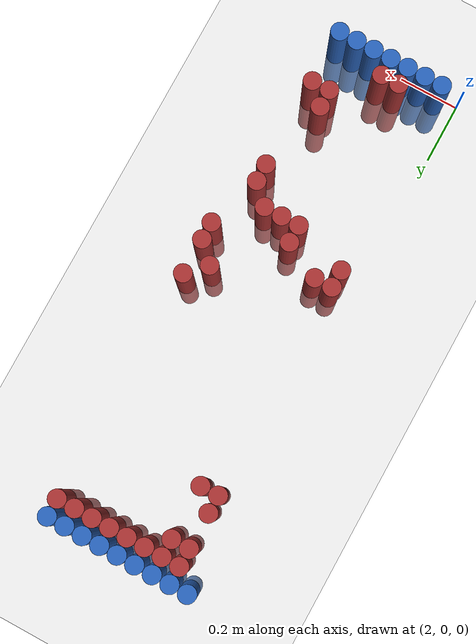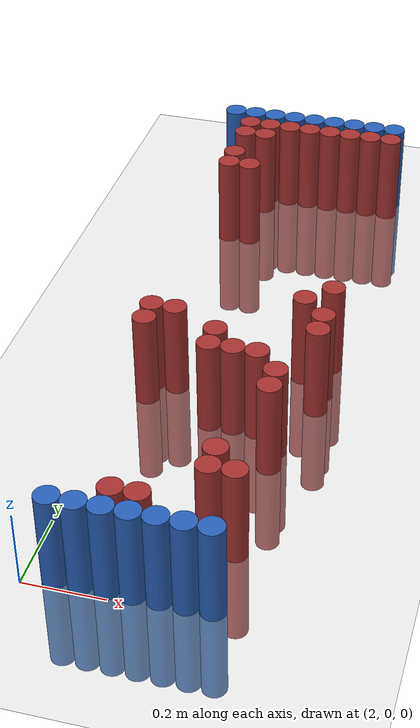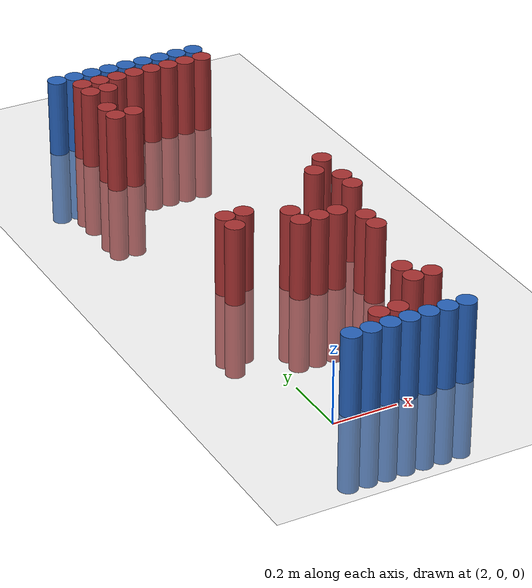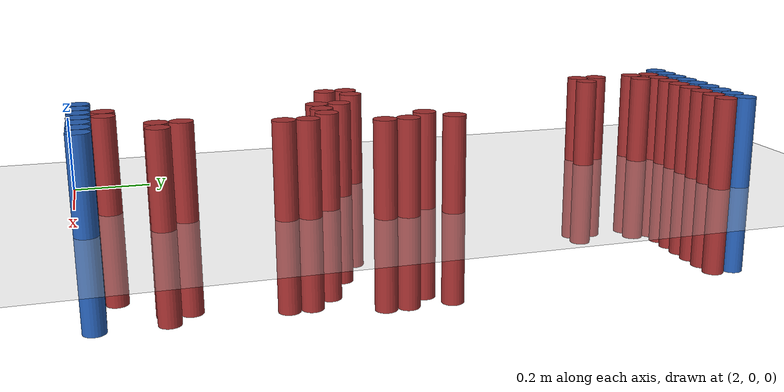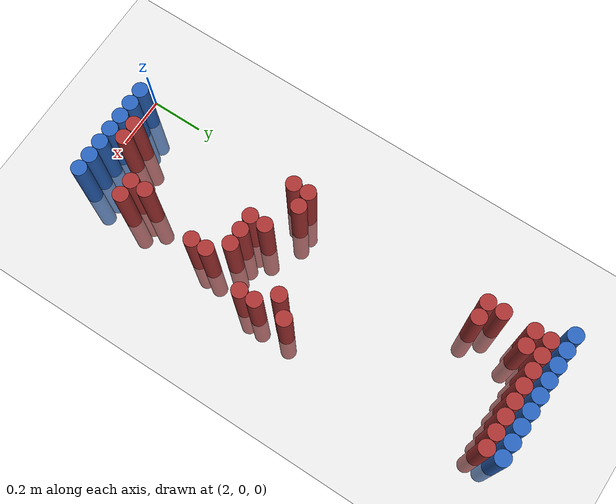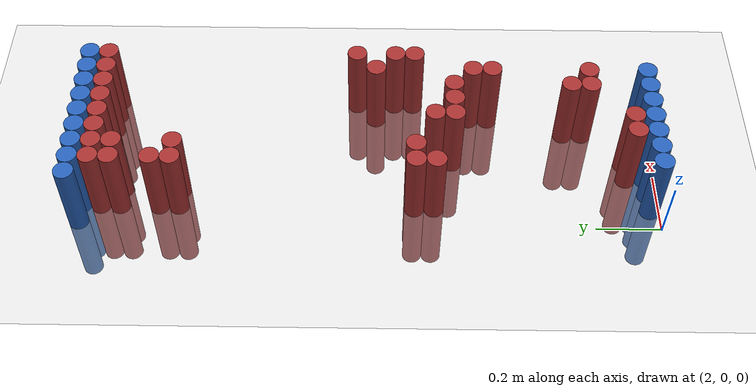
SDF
<sdf version="1.6">
 <world name="default">
  <model name="ground_plane">
   <static>1</static>
   <link name="link">
    <collision name="collision">
     <geometry><plane><normal>0 0 1</normal><size>100 100</size></plane></geometry>
     <surface><friction><ode><mu>100</mu><mu2>50</mu2></ode></friction></surface>
    </collision>
    <visual name="visual">
     <cast_shadows>0</cast_shadows>
     <geometry><plane><normal>0 0 1</normal><size>100 100</size></plane></geometry>
     <material>
      <script><uri>file://media/materials/scripts/gazebo.material</uri><name>Gazebo/Grey</name></script>
     </material>
    </visual>
   </link>
  </model>
  <model name="unit_cylinder_94">
   <static>1</static>
   <pose>2.010000 1.770000 0.000000 0.000000 0.000000 0.000000</pose>
   <link name="link">
    <inertial>
     <mass>1</mass>
     <inertia><ixx>0.145833</ixx><ixy>0</ixy><ixz>0</ixz><iyy>0.145833</iyy><iyz>0</iyz><izz>0.125</izz></inertia>
    </inertial>
    <collision name="collision">
     <geometry><cylinder><radius>0.030000</radius><length>0.5</length></cylinder></geometry>
    </collision>
    <visual name="visual">
     <geometry><cylinder><radius>0.030000</radius><length>0.5</length></cylinder></geometry>
     <material>
      <ambient>0.152000 0.379000 0.720000 1</ambient>
      <diffuse>0.152000 0.379000 0.720000 1</diffuse>
     </material>
     <material>
      <script><name>Gazebo/Grey</name><uri>file://media/materials/scripts/gazebo.material</uri></script>
     </material>
    </visual>
   </link>
  </model>
  <model name="unit_cylinder_95">
   <static>1</static>
   <pose>2.070000 1.770000 0.000000 0.000000 0.000000 0.000000</pose>
   <link name="link">
    <inertial>
     <mass>1</mass>
     <inertia><ixx>0.145833</ixx><ixy>0</ixy><ixz>0</ixz><iyy>0.145833</iyy><iyz>0</iyz><izz>0.125</izz></inertia>
    </inertial>
    <collision name="collision">
     <geometry><cylinder><radius>0.030000</radius><length>0.5</length></cylinder></geometry>
    </collision>
    <visual name="visual">
     <geometry><cylinder><radius>0.030000</radius><length>0.5</length></cylinder></geometry>
     <material>
      <ambient>0.152000 0.379000 0.720000 1</ambient>
      <diffuse>0.152000 0.379000 0.720000 1</diffuse>
     </material>
     <material>
      <script><name>Gazebo/Grey</name><uri>file://media/materials/scripts/gazebo.material</uri></script>
     </material>
    </visual>
   </link>
  </model>
  <model name="unit_cylinder_96">
   <static>1</static>
   <pose>2.130000 1.770000 0.000000 0.000000 0.000000 0.000000</pose>
   <link name="link">
    <inertial>
     <mass>1</mass>
     <inertia><ixx>0.145833</ixx><ixy>0</ixy><ixz>0</ixz><iyy>0.145833</iyy><iyz>0</iyz><izz>0.125</izz></inertia>
    </inertial>
    <collision name="collision">
     <geometry><cylinder><radius>0.030000</radius><length>0.5</length></cylinder></geometry>
    </collision>
    <visual name="visual">
     <geometry><cylinder><radius>0.030000</radius><length>0.5</length></cylinder></geometry>
     <material>
      <ambient>0.152000 0.379000 0.720000 1</ambient>
      <diffuse>0.152000 0.379000 0.720000 1</diffuse>
     </material>
     <material>
      <script><name>Gazebo/Grey</name><uri>file://media/materials/scripts/gazebo.material</uri></script>
     </material>
    </visual>
   </link>
  </model>
  <model name="unit_cylinder_97">
   <static>1</static>
   <pose>2.190000 1.770000 0.000000 0.000000 0.000000 0.000000</pose>
   <link name="link">
    <inertial>
     <mass>1</mass>
     <inertia><ixx>0.145833</ixx><ixy>0</ixy><ixz>0</ixz><iyy>0.145833</iyy><iyz>0</iyz><izz>0.125</izz></inertia>
    </inertial>
    <collision name="collision">
     <geometry><cylinder><radius>0.030000</radius><length>0.5</length></cylinder></geometry>
    </collision>
    <visual name="visual">
     <geometry><cylinder><radius>0.030000</radius><length>0.5</length></cylinder></geometry>
     <material>
      <ambient>0.152000 0.379000 0.720000 1</ambient>
      <diffuse>0.152000 0.379000 0.720000 1</diffuse>
     </material>
     <material>
      <script><name>Gazebo/Grey</name><uri>file://media/materials/scripts/gazebo.material</uri></script>
     </material>
    </visual>
   </link>
  </model>
  <model name="unit_cylinder_98">
   <static>1</static>
   <pose>2.250000 1.770000 0.000000 0.000000 0.000000 0.000000</pose>
   <link name="link">
    <inertial>
     <mass>1</mass>
     <inertia><ixx>0.145833</ixx><ixy>0</ixy><ixz>0</ixz><iyy>0.145833</iyy><iyz>0</iyz><izz>0.125</izz></inertia>
    </inertial>
    <collision name="collision">
     <geometry><cylinder><radius>0.030000</radius><length>0.5</length></cylinder></geometry>
    </collision>
    <visual name="visual">
     <geometry><cylinder><radius>0.030000</radius><length>0.5</length></cylinder></geometry>
     <material>
      <ambient>0.152000 0.379000 0.720000 1</ambient>
      <diffuse>0.152000 0.379000 0.720000 1</diffuse>
     </material>
     <material>
      <script><name>Gazebo/Grey</name><uri>file://media/materials/scripts/gazebo.material</uri></script>
     </material>
    </visual>
   </link>
  </model>
  <model name="unit_cylinder_99">
   <static>1</static>
   <pose>2.310000 1.770000 0.000000 0.000000 0.000000 0.000000</pose>
   <link name="link">
    <inertial>
     <mass>1</mass>
     <inertia><ixx>0.145833</ixx><ixy>0</ixy><ixz>0</ixz><iyy>0.145833</iyy><iyz>0</iyz><izz>0.125</izz></inertia>
    </inertial>
    <collision name="collision">
     <geometry><cylinder><radius>0.030000</radius><length>0.5</length></cylinder></geometry>
    </collision>
    <visual name="visual">
     <geometry><cylinder><radius>0.030000</radius><length>0.5</length></cylinder></geometry>
     <material>
      <ambient>0.152000 0.379000 0.720000 1</ambient>
      <diffuse>0.152000 0.379000 0.720000 1</diffuse>
     </material>
     <material>
      <script><name>Gazebo/Grey</name><uri>file://media/materials/scripts/gazebo.material</uri></script>
     </material>
    </visual>
   </link>
  </model>
  <model name="unit_cylinder_100">
   <static>1</static>
   <pose>2.370000 1.770000 0.000000 0.000000 0.000000 0.000000</pose>
   <link name="link">
    <inertial>
     <mass>1</mass>
     <inertia><ixx>0.145833</ixx><ixy>0</ixy><ixz>0</ixz><iyy>0.145833</iyy><iyz>0</iyz><izz>0.125</izz></inertia>
    </inertial>
    <collision name="collision">
     <geometry><cylinder><radius>0.030000</radius><length>0.5</length></cylinder></geometry>
    </collision>
    <visual name="visual">
     <geometry><cylinder><radius>0.030000</radius><length>0.5</length></cylinder></geometry>
     <material>
      <ambient>0.152000 0.379000 0.720000 1</ambient>
      <diffuse>0.152000 0.379000 0.720000 1</diffuse>
     </material>
     <material>
      <script><name>Gazebo/Grey</name><uri>file://media/materials/scripts/gazebo.material</uri></script>
     </material>
    </visual>
   </link>
  </model>
  <model name="unit_cylinder_101">
   <static>1</static>
   <pose>2.430000 1.770000 0.000000 0.000000 0.000000 0.000000</pose>
   <link name="link">
    <inertial>
     <mass>1</mass>
     <inertia><ixx>0.145833</ixx><ixy>0</ixy><ixz>0</ixz><iyy>0.145833</iyy><iyz>0</iyz><izz>0.125</izz></inertia>
    </inertial>
    <collision name="collision">
     <geometry><cylinder><radius>0.030000</radius><length>0.5</length></cylinder></geometry>
    </collision>
    <visual name="visual">
     <geometry><cylinder><radius>0.030000</radius><length>0.5</length></cylinder></geometry>
     <material>
      <ambient>0.152000 0.379000 0.720000 1</ambient>
      <diffuse>0.152000 0.379000 0.720000 1</diffuse>
     </material>
     <material>
      <script><name>Gazebo/Grey</name><uri>file://media/materials/scripts/gazebo.material</uri></script>
     </material>
    </visual>
   </link>
  </model>
  <model name="unit_cylinder_102">
   <static>1</static>
   <pose>2.490000 1.770000 0.000000 0.000000 0.000000 0.000000</pose>
   <link name="link">
    <inertial>
     <mass>1</mass>
     <inertia><ixx>0.145833</ixx><ixy>0</ixy><ixz>0</ixz><iyy>0.145833</iyy><iyz>0</iyz><izz>0.125</izz></inertia>
    </inertial>
    <collision name="collision">
     <geometry><cylinder><radius>0.030000</radius><length>0.5</length></cylinder></geometry>
    </collision>
    <visual name="visual">
     <geometry><cylinder><radius>0.030000</radius><length>0.5</length></cylinder></geometry>
     <material>
      <ambient>0.152000 0.379000 0.720000 1</ambient>
      <diffuse>0.152000 0.379000 0.720000 1</diffuse>
     </material>
     <material>
      <script><name>Gazebo/Grey</name><uri>file://media/materials/scripts/gazebo.material</uri></script>
     </material>
    </visual>
   </link>
  </model>
  <model name="unit_cylinder_125">
   <static>1</static>
   <pose>2.070000 1.710000 0.000000 0.000000 0.000000 0.000000</pose>
   <link name="link">
    <inertial>
     <mass>1</mass>
     <inertia><ixx>0.145833</ixx><ixy>0</ixy><ixz>0</ixz><iyy>0.145833</iyy><iyz>0</iyz><izz>0.125</izz></inertia>
    </inertial>
    <collision name="collision">
     <geometry><cylinder><radius>0.030000</radius><length>0.5</length></cylinder></geometry>
    </collision>
    <visual name="visual">
     <geometry><cylinder><radius>0.030000</radius><length>0.5</length></cylinder></geometry>
     <material>
      <ambient>0.648000 0.192000 0.192000 1</ambient>
      <diffuse>0.648000 0.192000 0.192000 1</diffuse>
     </material>
     <material>
      <script><name>Gazebo/Grey</name><uri>file://media/materials/scripts/gazebo.material</uri></script>
     </material>
    </visual>
   </link>
  </model>
  <model name="unit_cylinder_126">
   <static>1</static>
   <pose>2.130000 1.710000 0.000000 0.000000 0.000000 0.000000</pose>
   <link name="link">
    <inertial>
     <mass>1</mass>
     <inertia><ixx>0.145833</ixx><ixy>0</ixy><ixz>0</ixz><iyy>0.145833</iyy><iyz>0</iyz><izz>0.125</izz></inertia>
    </inertial>
    <collision name="collision">
     <geometry><cylinder><radius>0.030000</radius><length>0.5</length></cylinder></geometry>
    </collision>
    <visual name="visual">
     <geometry><cylinder><radius>0.030000</radius><length>0.5</length></cylinder></geometry>
     <material>
      <ambient>0.648000 0.192000 0.192000 1</ambient>
      <diffuse>0.648000 0.192000 0.192000 1</diffuse>
     </material>
     <material>
      <script><name>Gazebo/Grey</name><uri>file://media/materials/scripts/gazebo.material</uri></script>
     </material>
    </visual>
   </link>
  </model>
  <model name="unit_cylinder_127">
   <static>1</static>
   <pose>2.190000 1.710000 0.000000 0.000000 0.000000 0.000000</pose>
   <link name="link">
    <inertial>
     <mass>1</mass>
     <inertia><ixx>0.145833</ixx><ixy>0</ixy><ixz>0</ixz><iyy>0.145833</iyy><iyz>0</iyz><izz>0.125</izz></inertia>
    </inertial>
    <collision name="collision">
     <geometry><cylinder><radius>0.030000</radius><length>0.5</length></cylinder></geometry>
    </collision>
    <visual name="visual">
     <geometry><cylinder><radius>0.030000</radius><length>0.5</length></cylinder></geometry>
     <material>
      <ambient>0.648000 0.192000 0.192000 1</ambient>
      <diffuse>0.648000 0.192000 0.192000 1</diffuse>
     </material>
     <material>
      <script><name>Gazebo/Grey</name><uri>file://media/materials/scripts/gazebo.material</uri></script>
     </material>
    </visual>
   </link>
  </model>
  <model name="unit_cylinder_128">
   <static>1</static>
   <pose>2.250000 1.710000 0.000000 0.000000 0.000000 0.000000</pose>
   <link name="link">
    <inertial>
     <mass>1</mass>
     <inertia><ixx>0.145833</ixx><ixy>0</ixy><ixz>0</ixz><iyy>0.145833</iyy><iyz>0</iyz><izz>0.125</izz></inertia>
    </inertial>
    <collision name="collision">
     <geometry><cylinder><radius>0.030000</radius><length>0.5</length></cylinder></geometry>
    </collision>
    <visual name="visual">
     <geometry><cylinder><radius>0.030000</radius><length>0.5</length></cylinder></geometry>
     <material>
      <ambient>0.648000 0.192000 0.192000 1</ambient>
      <diffuse>0.648000 0.192000 0.192000 1</diffuse>
     </material>
     <material>
      <script><name>Gazebo/Grey</name><uri>file://media/materials/scripts/gazebo.material</uri></script>
     </material>
    </visual>
   </link>
  </model>
  <model name="unit_cylinder_129">
   <static>1</static>
   <pose>2.310000 1.710000 0.000000 0.000000 0.000000 0.000000</pose>
   <link name="link">
    <inertial>
     <mass>1</mass>
     <inertia><ixx>0.145833</ixx><ixy>0</ixy><ixz>0</ixz><iyy>0.145833</iyy><iyz>0</iyz><izz>0.125</izz></inertia>
    </inertial>
    <collision name="collision">
     <geometry><cylinder><radius>0.030000</radius><length>0.5</length></cylinder></geometry>
    </collision>
    <visual name="visual">
     <geometry><cylinder><radius>0.030000</radius><length>0.5</length></cylinder></geometry>
     <material>
      <ambient>0.648000 0.192000 0.192000 1</ambient>
      <diffuse>0.648000 0.192000 0.192000 1</diffuse>
     </material>
     <material>
      <script><name>Gazebo/Grey</name><uri>file://media/materials/scripts/gazebo.material</uri></script>
     </material>
    </visual>
   </link>
  </model>
  <model name="unit_cylinder_130">
   <static>1</static>
   <pose>2.370000 1.710000 0.000000 0.000000 0.000000 0.000000</pose>
   <link name="link">
    <inertial>
     <mass>1</mass>
     <inertia><ixx>0.145833</ixx><ixy>0</ixy><ixz>0</ixz><iyy>0.145833</iyy><iyz>0</iyz><izz>0.125</izz></inertia>
    </inertial>
    <collision name="collision">
     <geometry><cylinder><radius>0.030000</radius><length>0.5</length></cylinder></geometry>
    </collision>
    <visual name="visual">
     <geometry><cylinder><radius>0.030000</radius><length>0.5</length></cylinder></geometry>
     <material>
      <ambient>0.648000 0.192000 0.192000 1</ambient>
      <diffuse>0.648000 0.192000 0.192000 1</diffuse>
     </material>
     <material>
      <script><name>Gazebo/Grey</name><uri>file://media/materials/scripts/gazebo.material</uri></script>
     </material>
    </visual>
   </link>
  </model>
  <model name="unit_cylinder_131">
   <static>1</static>
   <pose>2.430000 1.710000 0.000000 0.000000 0.000000 0.000000</pose>
   <link name="link">
    <inertial>
     <mass>1</mass>
     <inertia><ixx>0.145833</ixx><ixy>0</ixy><ixz>0</ixz><iyy>0.145833</iyy><iyz>0</iyz><izz>0.125</izz></inertia>
    </inertial>
    <collision name="collision">
     <geometry><cylinder><radius>0.030000</radius><length>0.5</length></cylinder></geometry>
    </collision>
    <visual name="visual">
     <geometry><cylinder><radius>0.030000</radius><length>0.5</length></cylinder></geometry>
     <material>
      <ambient>0.648000 0.192000 0.192000 1</ambient>
      <diffuse>0.648000 0.192000 0.192000 1</diffuse>
     </material>
     <material>
      <script><name>Gazebo/Grey</name><uri>file://media/materials/scripts/gazebo.material</uri></script>
     </material>
    </visual>
   </link>
  </model>
  <model name="unit_cylinder_132">
   <static>1</static>
   <pose>2.490000 1.710000 0.000000 0.000000 0.000000 0.000000</pose>
   <link name="link">
    <inertial>
     <mass>1</mass>
     <inertia><ixx>0.145833</ixx><ixy>0</ixy><ixz>0</ixz><iyy>0.145833</iyy><iyz>0</iyz><izz>0.125</izz></inertia>
    </inertial>
    <collision name="collision">
     <geometry><cylinder><radius>0.030000</radius><length>0.5</length></cylinder></geometry>
    </collision>
    <visual name="visual">
     <geometry><cylinder><radius>0.030000</radius><length>0.5</length></cylinder></geometry>
     <material>
      <ambient>0.648000 0.192000 0.192000 1</ambient>
      <diffuse>0.648000 0.192000 0.192000 1</diffuse>
     </material>
     <material>
      <script><name>Gazebo/Grey</name><uri>file://media/materials/scripts/gazebo.material</uri></script>
     </material>
    </visual>
   </link>
  </model>
  <model name="unit_cylinder_145">
   <static>1</static>
   <pose>2.070000 1.650000 0.000000 0.000000 0.000000 0.000000</pose>
   <link name="link">
    <inertial>
     <mass>1</mass>
     <inertia><ixx>0.145833</ixx><ixy>0</ixy><ixz>0</ixz><iyy>0.145833</iyy><iyz>0</iyz><izz>0.125</izz></inertia>
    </inertial>
    <collision name="collision">
     <geometry><cylinder><radius>0.030000</radius><length>0.5</length></cylinder></geometry>
    </collision>
    <visual name="visual">
     <geometry><cylinder><radius>0.030000</radius><length>0.5</length></cylinder></geometry>
     <material>
      <ambient>0.648000 0.192000 0.192000 1</ambient>
      <diffuse>0.648000 0.192000 0.192000 1</diffuse>
     </material>
     <material>
      <script><name>Gazebo/Grey</name><uri>file://media/materials/scripts/gazebo.material</uri></script>
     </material>
    </visual>
   </link>
  </model>
  <model name="unit_cylinder_146">
   <static>1</static>
   <pose>2.130000 1.650000 0.000000 0.000000 0.000000 0.000000</pose>
   <link name="link">
    <inertial>
     <mass>1</mass>
     <inertia><ixx>0.145833</ixx><ixy>0</ixy><ixz>0</ixz><iyy>0.145833</iyy><iyz>0</iyz><izz>0.125</izz></inertia>
    </inertial>
    <collision name="collision">
     <geometry><cylinder><radius>0.030000</radius><length>0.5</length></cylinder></geometry>
    </collision>
    <visual name="visual">
     <geometry><cylinder><radius>0.030000</radius><length>0.5</length></cylinder></geometry>
     <material>
      <ambient>0.648000 0.192000 0.192000 1</ambient>
      <diffuse>0.648000 0.192000 0.192000 1</diffuse>
     </material>
     <material>
      <script><name>Gazebo/Grey</name><uri>file://media/materials/scripts/gazebo.material</uri></script>
     </material>
    </visual>
   </link>
  </model>
  <model name="unit_cylinder_154">
   <static>1</static>
   <pose>2.070000 1.530000 0.000000 0.000000 0.000000 0.000000</pose>
   <link name="link">
    <inertial>
     <mass>1</mass>
     <inertia><ixx>0.145833</ixx><ixy>0</ixy><ixz>0</ixz><iyy>0.145833</iyy><iyz>0</iyz><izz>0.125</izz></inertia>
    </inertial>
    <collision name="collision">
     <geometry><cylinder><radius>0.030000</radius><length>0.5</length></cylinder></geometry>
    </collision>
    <visual name="visual">
     <geometry><cylinder><radius>0.030000</radius><length>0.5</length></cylinder></geometry>
     <material>
      <ambient>0.648000 0.192000 0.192000 1</ambient>
      <diffuse>0.648000 0.192000 0.192000 1</diffuse>
     </material>
     <material>
      <script><name>Gazebo/Grey</name><uri>file://media/materials/scripts/gazebo.material</uri></script>
     </material>
    </visual>
   </link>
  </model>
  <model name="unit_cylinder_155">
   <static>1</static>
   <pose>2.070000 1.470000 0.000000 0.000000 0.000000 0.000000</pose>
   <link name="link">
    <inertial>
     <mass>1</mass>
     <inertia><ixx>0.145833</ixx><ixy>0</ixy><ixz>0</ixz><iyy>0.145833</iyy><iyz>0</iyz><izz>0.125</izz></inertia>
    </inertial>
    <collision name="collision">
     <geometry><cylinder><radius>0.030000</radius><length>0.5</length></cylinder></geometry>
    </collision>
    <visual name="visual">
     <geometry><cylinder><radius>0.030000</radius><length>0.5</length></cylinder></geometry>
     <material>
      <ambient>0.648000 0.192000 0.192000 1</ambient>
      <diffuse>0.648000 0.192000 0.192000 1</diffuse>
     </material>
     <material>
      <script><name>Gazebo/Grey</name><uri>file://media/materials/scripts/gazebo.material</uri></script>
     </material>
    </visual>
   </link>
  </model>
  <model name="unit_cylinder_156">
   <static>1</static>
   <pose>2.130000 1.470000 0.000000 0.000000 0.000000 0.000000</pose>
   <link name="link">
    <inertial>
     <mass>1</mass>
     <inertia><ixx>0.145833</ixx><ixy>0</ixy><ixz>0</ixz><iyy>0.145833</iyy><iyz>0</iyz><izz>0.125</izz></inertia>
    </inertial>
    <collision name="collision">
     <geometry><cylinder><radius>0.030000</radius><length>0.5</length></cylinder></geometry>
    </collision>
    <visual name="visual">
     <geometry><cylinder><radius>0.030000</radius><length>0.5</length></cylinder></geometry>
     <material>
      <ambient>0.648000 0.192000 0.192000 1</ambient>
      <diffuse>0.648000 0.192000 0.192000 1</diffuse>
     </material>
     <material>
      <script><name>Gazebo/Grey</name><uri>file://media/materials/scripts/gazebo.material</uri></script>
     </material>
    </visual>
   </link>
  </model>
  <model name="unit_cylinder_173">
   <static>1</static>
   <pose>2.490000 0.930000 0.000000 0.000000 0.000000 0.000000</pose>
   <link name="link">
    <inertial>
     <mass>1</mass>
     <inertia><ixx>0.145833</ixx><ixy>0</ixy><ixz>0</ixz><iyy>0.145833</iyy><iyz>0</iyz><izz>0.125</izz></inertia>
    </inertial>
    <collision name="collision">
     <geometry><cylinder><radius>0.030000</radius><length>0.5</length></cylinder></geometry>
    </collision>
    <visual name="visual">
     <geometry><cylinder><radius>0.030000</radius><length>0.5</length></cylinder></geometry>
     <material>
      <ambient>0.648000 0.192000 0.192000 1</ambient>
      <diffuse>0.648000 0.192000 0.192000 1</diffuse>
     </material>
     <material>
      <script><name>Gazebo/Grey</name><uri>file://media/materials/scripts/gazebo.material</uri></script>
     </material>
    </visual>
   </link>
  </model>
  <model name="unit_cylinder_174">
   <static>1</static>
   <pose>2.430000 0.870000 0.000000 0.000000 0.000000 0.000000</pose>
   <link name="link">
    <inertial>
     <mass>1</mass>
     <inertia><ixx>0.145833</ixx><ixy>0</ixy><ixz>0</ixz><iyy>0.145833</iyy><iyz>0</iyz><izz>0.125</izz></inertia>
    </inertial>
    <collision name="collision">
     <geometry><cylinder><radius>0.030000</radius><length>0.5</length></cylinder></geometry>
    </collision>
    <visual name="visual">
     <geometry><cylinder><radius>0.030000</radius><length>0.5</length></cylinder></geometry>
     <material>
      <ambient>0.648000 0.192000 0.192000 1</ambient>
      <diffuse>0.648000 0.192000 0.192000 1</diffuse>
     </material>
     <material>
      <script><name>Gazebo/Grey</name><uri>file://media/materials/scripts/gazebo.material</uri></script>
     </material>
    </visual>
   </link>
  </model>
  <model name="unit_cylinder_177">
   <static>1</static>
   <pose>2.490000 0.810000 0.000000 0.000000 0.000000 0.000000</pose>
   <link name="link">
    <inertial>
     <mass>1</mass>
     <inertia><ixx>0.145833</ixx><ixy>0</ixy><ixz>0</ixz><iyy>0.145833</iyy><iyz>0</iyz><izz>0.125</izz></inertia>
    </inertial>
    <collision name="collision">
     <geometry><cylinder><radius>0.030000</radius><length>0.5</length></cylinder></geometry>
    </collision>
    <visual name="visual">
     <geometry><cylinder><radius>0.030000</radius><length>0.5</length></cylinder></geometry>
     <material>
      <ambient>0.648000 0.192000 0.192000 1</ambient>
      <diffuse>0.648000 0.192000 0.192000 1</diffuse>
     </material>
     <material>
      <script><name>Gazebo/Grey</name><uri>file://media/materials/scripts/gazebo.material</uri></script>
     </material>
    </visual>
   </link>
  </model>
  <model name="unit_cylinder_186">
   <static>1</static>
   <pose>2.070000 0.750000 0.000000 0.000000 0.000000 0.000000</pose>
   <link name="link">
    <inertial>
     <mass>1</mass>
     <inertia><ixx>0.145833</ixx><ixy>0</ixy><ixz>0</ixz><iyy>0.145833</iyy><iyz>0</iyz><izz>0.125</izz></inertia>
    </inertial>
    <collision name="collision">
     <geometry><cylinder><radius>0.030000</radius><length>0.5</length></cylinder></geometry>
    </collision>
    <visual name="visual">
     <geometry><cylinder><radius>0.030000</radius><length>0.5</length></cylinder></geometry>
     <material>
      <ambient>0.648000 0.192000 0.192000 1</ambient>
      <diffuse>0.648000 0.192000 0.192000 1</diffuse>
     </material>
     <material>
      <script><name>Gazebo/Grey</name><uri>file://media/materials/scripts/gazebo.material</uri></script>
     </material>
    </visual>
   </link>
  </model>
  <model name="unit_cylinder_187">
   <static>1</static>
   <pose>2.130000 0.750000 0.000000 0.000000 0.000000 0.000000</pose>
   <link name="link">
    <inertial>
     <mass>1</mass>
     <inertia><ixx>0.145833</ixx><ixy>0</ixy><ixz>0</ixz><iyy>0.145833</iyy><iyz>0</iyz><izz>0.125</izz></inertia>
    </inertial>
    <collision name="collision">
     <geometry><cylinder><radius>0.030000</radius><length>0.5</length></cylinder></geometry>
    </collision>
    <visual name="visual">
     <geometry><cylinder><radius>0.030000</radius><length>0.5</length></cylinder></geometry>
     <material>
      <ambient>0.648000 0.192000 0.192000 1</ambient>
      <diffuse>0.648000 0.192000 0.192000 1</diffuse>
     </material>
     <material>
      <script><name>Gazebo/Grey</name><uri>file://media/materials/scripts/gazebo.material</uri></script>
     </material>
    </visual>
   </link>
  </model>
  <model name="unit_cylinder_188">
   <static>1</static>
   <pose>2.490000 0.750000 0.000000 0.000000 0.000000 0.000000</pose>
   <link name="link">
    <inertial>
     <mass>1</mass>
     <inertia><ixx>0.145833</ixx><ixy>0</ixy><ixz>0</ixz><iyy>0.145833</iyy><iyz>0</iyz><izz>0.125</izz></inertia>
    </inertial>
    <collision name="collision">
     <geometry><cylinder><radius>0.030000</radius><length>0.5</length></cylinder></geometry>
    </collision>
    <visual name="visual">
     <geometry><cylinder><radius>0.030000</radius><length>0.5</length></cylinder></geometry>
     <material>
      <ambient>0.648000 0.192000 0.192000 1</ambient>
      <diffuse>0.648000 0.192000 0.192000 1</diffuse>
     </material>
     <material>
      <script><name>Gazebo/Grey</name><uri>file://media/materials/scripts/gazebo.material</uri></script>
     </material>
    </visual>
   </link>
  </model>
  <model name="unit_cylinder_195">
   <static>1</static>
   <pose>2.070000 0.690000 0.000000 0.000000 0.000000 0.000000</pose>
   <link name="link">
    <inertial>
     <mass>1</mass>
     <inertia><ixx>0.145833</ixx><ixy>0</ixy><ixz>0</ixz><iyy>0.145833</iyy><iyz>0</iyz><izz>0.125</izz></inertia>
    </inertial>
    <collision name="collision">
     <geometry><cylinder><radius>0.030000</radius><length>0.5</length></cylinder></geometry>
    </collision>
    <visual name="visual">
     <geometry><cylinder><radius>0.030000</radius><length>0.5</length></cylinder></geometry>
     <material>
      <ambient>0.648000 0.192000 0.192000 1</ambient>
      <diffuse>0.648000 0.192000 0.192000 1</diffuse>
     </material>
     <material>
      <script><name>Gazebo/Grey</name><uri>file://media/materials/scripts/gazebo.material</uri></script>
     </material>
    </visual>
   </link>
  </model>
  <model name="unit_cylinder_196">
   <static>1</static>
   <pose>2.250000 0.690000 0.000000 0.000000 0.000000 0.000000</pose>
   <link name="link">
    <inertial>
     <mass>1</mass>
     <inertia><ixx>0.145833</ixx><ixy>0</ixy><ixz>0</ixz><iyy>0.145833</iyy><iyz>0</iyz><izz>0.125</izz></inertia>
    </inertial>
    <collision name="collision">
     <geometry><cylinder><radius>0.030000</radius><length>0.5</length></cylinder></geometry>
    </collision>
    <visual name="visual">
     <geometry><cylinder><radius>0.030000</radius><length>0.5</length></cylinder></geometry>
     <material>
      <ambient>0.648000 0.192000 0.192000 1</ambient>
      <diffuse>0.648000 0.192000 0.192000 1</diffuse>
     </material>
     <material>
      <script><name>Gazebo/Grey</name><uri>file://media/materials/scripts/gazebo.material</uri></script>
     </material>
    </visual>
   </link>
  </model>
  <model name="unit_cylinder_199">
   <static>1</static>
   <pose>2.250000 0.630000 0.000000 0.000000 0.000000 0.000000</pose>
   <link name="link">
    <inertial>
     <mass>1</mass>
     <inertia><ixx>0.145833</ixx><ixy>0</ixy><ixz>0</ixz><iyy>0.145833</iyy><iyz>0</iyz><izz>0.125</izz></inertia>
    </inertial>
    <collision name="collision">
     <geometry><cylinder><radius>0.030000</radius><length>0.5</length></cylinder></geometry>
    </collision>
    <visual name="visual">
     <geometry><cylinder><radius>0.030000</radius><length>0.5</length></cylinder></geometry>
     <material>
      <ambient>0.648000 0.192000 0.192000 1</ambient>
      <diffuse>0.648000 0.192000 0.192000 1</diffuse>
     </material>
     <material>
      <script><name>Gazebo/Grey</name><uri>file://media/materials/scripts/gazebo.material</uri></script>
     </material>
    </visual>
   </link>
  </model>
  <model name="unit_cylinder_200">
   <static>1</static>
   <pose>2.310000 0.630000 0.000000 0.000000 0.000000 0.000000</pose>
   <link name="link">
    <inertial>
     <mass>1</mass>
     <inertia><ixx>0.145833</ixx><ixy>0</ixy><ixz>0</ixz><iyy>0.145833</iyy><iyz>0</iyz><izz>0.125</izz></inertia>
    </inertial>
    <collision name="collision">
     <geometry><cylinder><radius>0.030000</radius><length>0.5</length></cylinder></geometry>
    </collision>
    <visual name="visual">
     <geometry><cylinder><radius>0.030000</radius><length>0.5</length></cylinder></geometry>
     <material>
      <ambient>0.648000 0.192000 0.192000 1</ambient>
      <diffuse>0.648000 0.192000 0.192000 1</diffuse>
     </material>
     <material>
      <script><name>Gazebo/Grey</name><uri>file://media/materials/scripts/gazebo.material</uri></script>
     </material>
    </visual>
   </link>
  </model>
  <model name="unit_cylinder_201">
   <static>1</static>
   <pose>2.370000 0.630000 0.000000 0.000000 0.000000 0.000000</pose>
   <link name="link">
    <inertial>
     <mass>1</mass>
     <inertia><ixx>0.145833</ixx><ixy>0</ixy><ixz>0</ixz><iyy>0.145833</iyy><iyz>0</iyz><izz>0.125</izz></inertia>
    </inertial>
    <collision name="collision">
     <geometry><cylinder><radius>0.030000</radius><length>0.5</length></cylinder></geometry>
    </collision>
    <visual name="visual">
     <geometry><cylinder><radius>0.030000</radius><length>0.5</length></cylinder></geometry>
     <material>
      <ambient>0.648000 0.192000 0.192000 1</ambient>
      <diffuse>0.648000 0.192000 0.192000 1</diffuse>
     </material>
     <material>
      <script><name>Gazebo/Grey</name><uri>file://media/materials/scripts/gazebo.material</uri></script>
     </material>
    </visual>
   </link>
  </model>
  <model name="unit_cylinder_206">
   <static>1</static>
   <pose>2.430000 0.570000 0.000000 0.000000 0.000000 0.000000</pose>
   <link name="link">
    <inertial>
     <mass>1</mass>
     <inertia><ixx>0.145833</ixx><ixy>0</ixy><ixz>0</ixz><iyy>0.145833</iyy><iyz>0</iyz><izz>0.125</izz></inertia>
    </inertial>
    <collision name="collision">
     <geometry><cylinder><radius>0.030000</radius><length>0.5</length></cylinder></geometry>
    </collision>
    <visual name="visual">
     <geometry><cylinder><radius>0.030000</radius><length>0.5</length></cylinder></geometry>
     <material>
      <ambient>0.648000 0.192000 0.192000 1</ambient>
      <diffuse>0.648000 0.192000 0.192000 1</diffuse>
     </material>
     <material>
      <script><name>Gazebo/Grey</name><uri>file://media/materials/scripts/gazebo.material</uri></script>
     </material>
    </visual>
   </link>
  </model>
  <model name="unit_cylinder_208">
   <static>1</static>
   <pose>2.430000 0.510000 0.000000 0.000000 0.000000 0.000000</pose>
   <link name="link">
    <inertial>
     <mass>1</mass>
     <inertia><ixx>0.145833</ixx><ixy>0</ixy><ixz>0</ixz><iyy>0.145833</iyy><iyz>0</iyz><izz>0.125</izz></inertia>
    </inertial>
    <collision name="collision">
     <geometry><cylinder><radius>0.030000</radius><length>0.5</length></cylinder></geometry>
    </collision>
    <visual name="visual">
     <geometry><cylinder><radius>0.030000</radius><length>0.5</length></cylinder></geometry>
     <material>
      <ambient>0.648000 0.192000 0.192000 1</ambient>
      <diffuse>0.648000 0.192000 0.192000 1</diffuse>
     </material>
     <material>
      <script><name>Gazebo/Grey</name><uri>file://media/materials/scripts/gazebo.material</uri></script>
     </material>
    </visual>
   </link>
  </model>
  <model name="unit_cylinder_222">
   <static>1</static>
   <pose>2.370000 0.270000 0.000000 0.000000 0.000000 0.000000</pose>
   <link name="link">
    <inertial>
     <mass>1</mass>
     <inertia><ixx>0.145833</ixx><ixy>0</ixy><ixz>0</ixz><iyy>0.145833</iyy><iyz>0</iyz><izz>0.125</izz></inertia>
    </inertial>
    <collision name="collision">
     <geometry><cylinder><radius>0.030000</radius><length>0.5</length></cylinder></geometry>
    </collision>
    <visual name="visual">
     <geometry><cylinder><radius>0.030000</radius><length>0.5</length></cylinder></geometry>
     <material>
      <ambient>0.648000 0.192000 0.192000 1</ambient>
      <diffuse>0.648000 0.192000 0.192000 1</diffuse>
     </material>
     <material>
      <script><name>Gazebo/Grey</name><uri>file://media/materials/scripts/gazebo.material</uri></script>
     </material>
    </visual>
   </link>
  </model>
  <model name="unit_cylinder_228">
   <static>1</static>
   <pose>2.370000 0.210000 0.000000 0.000000 0.000000 0.000000</pose>
   <link name="link">
    <inertial>
     <mass>1</mass>
     <inertia><ixx>0.145833</ixx><ixy>0</ixy><ixz>0</ixz><iyy>0.145833</iyy><iyz>0</iyz><izz>0.125</izz></inertia>
    </inertial>
    <collision name="collision">
     <geometry><cylinder><radius>0.030000</radius><length>0.5</length></cylinder></geometry>
    </collision>
    <visual name="visual">
     <geometry><cylinder><radius>0.030000</radius><length>0.5</length></cylinder></geometry>
     <material>
      <ambient>0.648000 0.192000 0.192000 1</ambient>
      <diffuse>0.648000 0.192000 0.192000 1</diffuse>
     </material>
     <material>
      <script><name>Gazebo/Grey</name><uri>file://media/materials/scripts/gazebo.material</uri></script>
     </material>
    </visual>
   </link>
  </model>
  <model name="unit_cylinder_229">
   <static>1</static>
   <pose>2.430000 0.210000 0.000000 0.000000 0.000000 0.000000</pose>
   <link name="link">
    <inertial>
     <mass>1</mass>
     <inertia><ixx>0.145833</ixx><ixy>0</ixy><ixz>0</ixz><iyy>0.145833</iyy><iyz>0</iyz><izz>0.125</izz></inertia>
    </inertial>
    <collision name="collision">
     <geometry><cylinder><radius>0.030000</radius><length>0.5</length></cylinder></geometry>
    </collision>
    <visual name="visual">
     <geometry><cylinder><radius>0.030000</radius><length>0.5</length></cylinder></geometry>
     <material>
      <ambient>0.648000 0.192000 0.192000 1</ambient>
      <diffuse>0.648000 0.192000 0.192000 1</diffuse>
     </material>
     <material>
      <script><name>Gazebo/Grey</name><uri>file://media/materials/scripts/gazebo.material</uri></script>
     </material>
    </visual>
   </link>
  </model>
  <model name="unit_cylinder_236">
   <static>1</static>
   <pose>2.190000 0.090000 0.000000 0.000000 0.000000 0.000000</pose>
   <link name="link">
    <inertial>
     <mass>1</mass>
     <inertia><ixx>0.145833</ixx><ixy>0</ixy><ixz>0</ixz><iyy>0.145833</iyy><iyz>0</iyz><izz>0.125</izz></inertia>
    </inertial>
    <collision name="collision">
     <geometry><cylinder><radius>0.030000</radius><length>0.5</length></cylinder></geometry>
    </collision>
    <visual name="visual">
     <geometry><cylinder><radius>0.030000</radius><length>0.5</length></cylinder></geometry>
     <material>
      <ambient>0.648000 0.192000 0.192000 1</ambient>
      <diffuse>0.648000 0.192000 0.192000 1</diffuse>
     </material>
     <material>
      <script><name>Gazebo/Grey</name><uri>file://media/materials/scripts/gazebo.material</uri></script>
     </material>
    </visual>
   </link>
  </model>
  <model name="unit_cylinder_237">
   <static>1</static>
   <pose>2.250000 0.090000 0.000000 0.000000 0.000000 0.000000</pose>
   <link name="link">
    <inertial>
     <mass>1</mass>
     <inertia><ixx>0.145833</ixx><ixy>0</ixy><ixz>0</ixz><iyy>0.145833</iyy><iyz>0</iyz><izz>0.125</izz></inertia>
    </inertial>
    <collision name="collision">
     <geometry><cylinder><radius>0.030000</radius><length>0.5</length></cylinder></geometry>
    </collision>
    <visual name="visual">
     <geometry><cylinder><radius>0.030000</radius><length>0.5</length></cylinder></geometry>
     <material>
      <ambient>0.648000 0.192000 0.192000 1</ambient>
      <diffuse>0.648000 0.192000 0.192000 1</diffuse>
     </material>
     <material>
      <script><name>Gazebo/Grey</name><uri>file://media/materials/scripts/gazebo.material</uri></script>
     </material>
    </visual>
   </link>
  </model>
  <model name="unit_cylinder_252">
   <static>1</static>
   <pose>2.070000 0.030000 0.000000 0.000000 0.000000 0.000000</pose>
   <link name="link">
    <inertial>
     <mass>1</mass>
     <inertia><ixx>0.145833</ixx><ixy>0</ixy><ixz>0</ixz><iyy>0.145833</iyy><iyz>0</iyz><izz>0.125</izz></inertia>
    </inertial>
    <collision name="collision">
     <geometry><cylinder><radius>0.030000</radius><length>0.5</length></cylinder></geometry>
    </collision>
    <visual name="visual">
     <geometry><cylinder><radius>0.030000</radius><length>0.5</length></cylinder></geometry>
     <material>
      <ambient>0.152000 0.379000 0.720000 1</ambient>
      <diffuse>0.152000 0.379000 0.720000 1</diffuse>
     </material>
     <material>
      <script><name>Gazebo/Grey</name><uri>file://media/materials/scripts/gazebo.material</uri></script>
     </material>
    </visual>
   </link>
  </model>
  <model name="unit_cylinder_253">
   <static>1</static>
   <pose>2.130000 0.030000 0.000000 0.000000 0.000000 0.000000</pose>
   <link name="link">
    <inertial>
     <mass>1</mass>
     <inertia><ixx>0.145833</ixx><ixy>0</ixy><ixz>0</ixz><iyy>0.145833</iyy><iyz>0</iyz><izz>0.125</izz></inertia>
    </inertial>
    <collision name="collision">
     <geometry><cylinder><radius>0.030000</radius><length>0.5</length></cylinder></geometry>
    </collision>
    <visual name="visual">
     <geometry><cylinder><radius>0.030000</radius><length>0.5</length></cylinder></geometry>
     <material>
      <ambient>0.152000 0.379000 0.720000 1</ambient>
      <diffuse>0.152000 0.379000 0.720000 1</diffuse>
     </material>
     <material>
      <script><name>Gazebo/Grey</name><uri>file://media/materials/scripts/gazebo.material</uri></script>
     </material>
    </visual>
   </link>
  </model>
  <model name="unit_cylinder_254">
   <static>1</static>
   <pose>2.190000 0.030000 0.000000 0.000000 0.000000 0.000000</pose>
   <link name="link">
    <inertial>
     <mass>1</mass>
     <inertia><ixx>0.145833</ixx><ixy>0</ixy><ixz>0</ixz><iyy>0.145833</iyy><iyz>0</iyz><izz>0.125</izz></inertia>
    </inertial>
    <collision name="collision">
     <geometry><cylinder><radius>0.030000</radius><length>0.5</length></cylinder></geometry>
    </collision>
    <visual name="visual">
     <geometry><cylinder><radius>0.030000</radius><length>0.5</length></cylinder></geometry>
     <material>
      <ambient>0.152000 0.379000 0.720000 1</ambient>
      <diffuse>0.152000 0.379000 0.720000 1</diffuse>
     </material>
     <material>
      <script><name>Gazebo/Grey</name><uri>file://media/materials/scripts/gazebo.material</uri></script>
     </material>
    </visual>
   </link>
  </model>
  <model name="unit_cylinder_255">
   <static>1</static>
   <pose>2.250000 0.030000 0.000000 0.000000 0.000000 0.000000</pose>
   <link name="link">
    <inertial>
     <mass>1</mass>
     <inertia><ixx>0.145833</ixx><ixy>0</ixy><ixz>0</ixz><iyy>0.145833</iyy><iyz>0</iyz><izz>0.125</izz></inertia>
    </inertial>
    <collision name="collision">
     <geometry><cylinder><radius>0.030000</radius><length>0.5</length></cylinder></geometry>
    </collision>
    <visual name="visual">
     <geometry><cylinder><radius>0.030000</radius><length>0.5</length></cylinder></geometry>
     <material>
      <ambient>0.152000 0.379000 0.720000 1</ambient>
      <diffuse>0.152000 0.379000 0.720000 1</diffuse>
     </material>
     <material>
      <script><name>Gazebo/Grey</name><uri>file://media/materials/scripts/gazebo.material</uri></script>
     </material>
    </visual>
   </link>
  </model>
  <model name="unit_cylinder_256">
   <static>1</static>
   <pose>2.310000 0.030000 0.000000 0.000000 0.000000 0.000000</pose>
   <link name="link">
    <inertial>
     <mass>1</mass>
     <inertia><ixx>0.145833</ixx><ixy>0</ixy><ixz>0</ixz><iyy>0.145833</iyy><iyz>0</iyz><izz>0.125</izz></inertia>
    </inertial>
    <collision name="collision">
     <geometry><cylinder><radius>0.030000</radius><length>0.5</length></cylinder></geometry>
    </collision>
    <visual name="visual">
     <geometry><cylinder><radius>0.030000</radius><length>0.5</length></cylinder></geometry>
     <material>
      <ambient>0.152000 0.379000 0.720000 1</ambient>
      <diffuse>0.152000 0.379000 0.720000 1</diffuse>
     </material>
     <material>
      <script><name>Gazebo/Grey</name><uri>file://media/materials/scripts/gazebo.material</uri></script>
     </material>
    </visual>
   </link>
  </model>
  <model name="unit_cylinder_257">
   <static>1</static>
   <pose>2.370000 0.030000 0.000000 0.000000 0.000000 0.000000</pose>
   <link name="link">
    <inertial>
     <mass>1</mass>
     <inertia><ixx>0.145833</ixx><ixy>0</ixy><ixz>0</ixz><iyy>0.145833</iyy><iyz>0</iyz><izz>0.125</izz></inertia>
    </inertial>
    <collision name="collision">
     <geometry><cylinder><radius>0.030000</radius><length>0.5</length></cylinder></geometry>
    </collision>
    <visual name="visual">
     <geometry><cylinder><radius>0.030000</radius><length>0.5</length></cylinder></geometry>
     <material>
      <ambient>0.152000 0.379000 0.720000 1</ambient>
      <diffuse>0.152000 0.379000 0.720000 1</diffuse>
     </material>
     <material>
      <script><name>Gazebo/Grey</name><uri>file://media/materials/scripts/gazebo.material</uri></script>
     </material>
    </visual>
   </link>
  </model>
  <model name="unit_cylinder_258">
   <static>1</static>
   <pose>2.430000 0.030000 0.000000 0.000000 0.000000 0.000000</pose>
   <link name="link">
    <inertial>
     <mass>1</mass>
     <inertia><ixx>0.145833</ixx><ixy>0</ixy><ixz>0</ixz><iyy>0.145833</iyy><iyz>0</iyz><izz>0.125</izz></inertia>
    </inertial>
    <collision name="collision">
     <geometry><cylinder><radius>0.030000</radius><length>0.5</length></cylinder></geometry>
    </collision>
    <visual name="visual">
     <geometry><cylinder><radius>0.030000</radius><length>0.5</length></cylinder></geometry>
     <material>
      <ambient>0.152000 0.379000 0.720000 1</ambient>
      <diffuse>0.152000 0.379000 0.720000 1</diffuse>
     </material>
     <material>
      <script><name>Gazebo/Grey</name><uri>file://media/materials/scripts/gazebo.material</uri></script>
     </material>
    </visual>
   </link>
  </model>
 </world>
</sdf>
